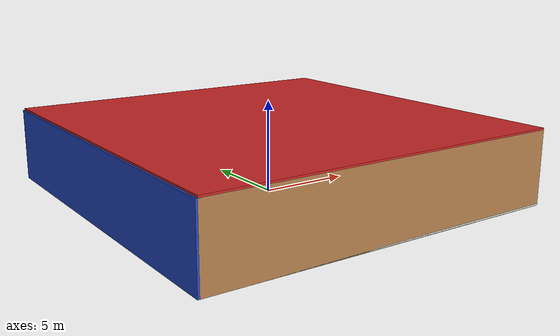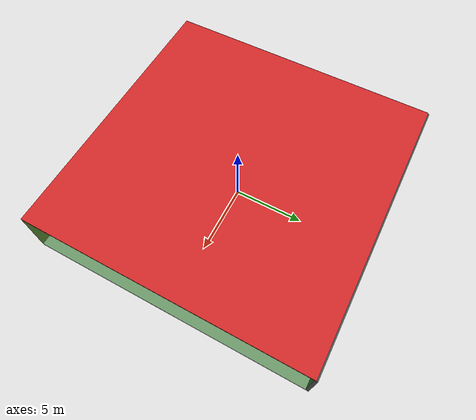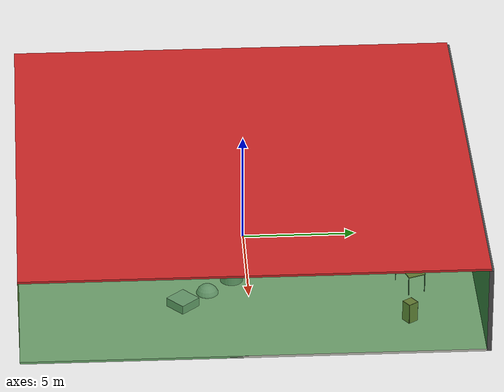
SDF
<sdf version="1.4">
 <world name="default">
  <physics type="ode">
   <max_step_size>0.001</max_step_size>
   <real_time_factor>1</real_time_factor>
   <real_time_update_rate>1000</real_time_update_rate>
   <gravity>0 0 -9.8</gravity>
  </physics>
  <scene><ambient>0.4 0.4 0.4 1</ambient><background>0.7 0.7 0.7 1</background><shadows>1</shadows></scene>
  <model name="Surrounding">
   <static>1</static>
   <link name="Ceiling">
    <collision name="Ceiling_Collision"><geometry><box><size>20 20 0.1</size></box></geometry></collision>
    <visual name="Ceiling_Visual">
     <geometry><box><size>20 20 0.1</size></box></geometry>
     <material>
      <script><uri>file://media/materials/scripts/gazebo.material</uri><name>Gazebo/RedGlow</name></script>
     </material>
    </visual>
    <pose>0 0 4.05 0 0 0</pose>
   </link>
   <link name="Wall_South">
    <collision name="Wall_South_Collision">
     <geometry><box><size>20 0 4</size></box></geometry>
     <pose>0 0 2 0 -0 0</pose>
    </collision>
    <visual name="Wall_South_Visual">
     <pose>0 0 2 0 -0 0</pose>
     <geometry><box><size>20 0 4</size></box></geometry>
     <material>
      <script><uri>file://media/materials/scripts/gazebo.material</uri><name>Gazebo/WoodFloor</name></script>
     </material>
    </visual>
    <velocity_decay><linear>0</linear><angular>0</angular></velocity_decay>
    <pose>0 -10 0 0 -0 0</pose>
   </link>
   <link name="Wall_East">
    <collision name="Wall_21_Collision">
     <geometry><box><size>20 0 4</size></box></geometry>
     <pose>0 0 2 0 -0 0</pose>
    </collision>
    <visual name="Wall_21_Visual">
     <pose>0 0 2 0 -0 0</pose>
     <geometry><box><size>20 0 4</size></box></geometry>
     <material>
      <script><uri>file://media/materials/scripts/gazebo.material</uri><name>Gazebo/GreenTransparent</name></script>
     </material>
    </visual>
    <velocity_decay><linear>0</linear><angular>0</angular></velocity_decay>
    <pose>10 0 0 0 -0 1.5708</pose>
   </link>
   <link name="Wall_North">
    <collision name="Wall_22_Collision">
     <geometry><box><size>20 0.2 4</size></box></geometry>
     <pose>0 0 2 0 -0 0</pose>
    </collision>
    <visual name="Wall_22_Visual">
     <pose>0 0 2 0 -0 0</pose>
     <geometry><box><size>20 0.2 4</size></box></geometry>
     <material>
      <script><uri>file://media/materials/scripts/gazebo.material</uri><name>Gazebo/DarkGrey</name></script>
     </material>
    </visual>
    <velocity_decay><linear>0</linear><angular>0</angular></velocity_decay>
    <pose>0 10 0 0 -0 0</pose>
   </link>
   <link name="Wall_West">
    <collision name="Wall_23_Collision">
     <geometry><box><size>20 0.2 4</size></box></geometry>
     <pose>0 0 2 0 -0 0</pose>
    </collision>
    <visual name="Wall_23_Visual">
     <pose>0 0 2 0 -0 0</pose>
     <geometry><box><size>20 0.2 4</size></box></geometry>
     <material>
      <script><uri>file://media/materials/scripts/gazebo.material</uri><name>Gazebo/BlueGlow</name></script>
     </material>
    </visual>
    <velocity_decay><linear>0</linear><angular>0</angular></velocity_decay>
    <pose>-10 0 0 0 0 -1.5708</pose>
   </link>
   <link name="Ground_link">
    <collision name="collision">
     <pose>0 0 .05 0 -0 0</pose>
     <geometry><box><size>20 20 0.1</size></box></geometry>
    </collision>
    <visual name="visual">
     <pose>0 0 .05 0 -0 0</pose>
     <geometry><box><size>20 20 0.1</size></box></geometry>
     <material>
      <script><uri>file://media/materials/scripts/gazebo.material</uri><name>Gazebo/PaintedWall</name></script>
     </material>
    </visual>
   </link>
   <static>1</static>
  </model>
  <spherical_coordinates>
   <surface_model>EARTH_WGS84</surface_model>
   <latitude_deg>0</latitude_deg>
   <longitude_deg>0</longitude_deg>
   <elevation>0</elevation>
   <heading_deg>0</heading_deg>
  </spherical_coordinates>
  <light name="lightball_0" type="diffuse">
   <diffuse>0.8 0.8 0.8 1</diffuse>
   <specular>0.2 0.2 0.2 1</specular>
   <attenuation>
    <range>100</range>
    <constant>0.7</constant>
    <linear>0.01</linear>
    <quadratic>0.001</quadratic>
   </attenuation>
   <direction>-0.5 0.1 -0.9</direction>
   <pose>4.64705744855 8.989524417 3.03159890731 0 0 0</pose>
  </light>
  <light name="lightball_1" type="diffuse">
   <diffuse>0.8 0.8 0.8 1</diffuse>
   <specular>0.2 0.2 0.2 1</specular>
   <attenuation>
    <range>100</range>
    <constant>0.7</constant>
    <linear>0.01</linear>
    <quadratic>0.001</quadratic>
   </attenuation>
   <direction>-0.5 0.1 -0.9</direction>
   <pose>-1.84978983653 -1.08864190391 1.92431507638 0 0 0</pose>
  </light>
  <light name="lightball_2" type="diffuse">
   <diffuse>0.8 0.8 0.8 1</diffuse>
   <specular>0.2 0.2 0.2 1</specular>
   <attenuation>
    <range>100</range>
    <constant>0.7</constant>
    <linear>0.01</linear>
    <quadratic>0.001</quadratic>
   </attenuation>
   <direction>-0.5 0.1 -0.9</direction>
   <pose>-6.27145465511 -2.57652398416 1.48829518501 0 0 0</pose>
  </light>
  <light name="lightball_3" type="diffuse">
   <diffuse>0.8 0.8 0.8 1</diffuse>
   <specular>0.2 0.2 0.2 1</specular>
   <attenuation>
    <range>100</range>
    <constant>0.7</constant>
    <linear>0.01</linear>
    <quadratic>0.001</quadratic>
   </attenuation>
   <direction>-0.5 0.1 -0.9</direction>
   <pose>2.53264481288 0.60827010671 1.36498648687 0 0 0</pose>
  </light>
  <light name="lightball_4" type="diffuse">
   <diffuse>0.8 0.8 0.8 1</diffuse>
   <specular>0.2 0.2 0.2 1</specular>
   <attenuation>
    <range>100</range>
    <constant>0.7</constant>
    <linear>0.01</linear>
    <quadratic>0.001</quadratic>
   </attenuation>
   <direction>-0.5 0.1 -0.9</direction>
   <pose>-6.4408598034 3.57926257534 3.75786296359 0 0 0</pose>
  </light>
  <light name="lightball_5" type="diffuse">
   <diffuse>0.8 0.8 0.8 1</diffuse>
   <specular>0.2 0.2 0.2 1</specular>
   <attenuation>
    <range>100</range>
    <constant>0.7</constant>
    <linear>0.01</linear>
    <quadratic>0.001</quadratic>
   </attenuation>
   <direction>-0.5 0.1 -0.9</direction>
   <pose>-1.76869256267 -1.84567724041 2.86350270826 0 0 0</pose>
  </light>
  <light name="lightball_6" type="diffuse">
   <diffuse>0.8 0.8 0.8 1</diffuse>
   <specular>0.2 0.2 0.2 1</specular>
   <attenuation>
    <range>100</range>
    <constant>0.7</constant>
    <linear>0.01</linear>
    <quadratic>0.001</quadratic>
   </attenuation>
   <direction>-0.5 0.1 -0.9</direction>
   <pose>6.40855052165 -9.2615225336 2.48218372221 0 0 0</pose>
  </light>
  <light name="lightball_7" type="diffuse">
   <diffuse>0.8 0.8 0.8 1</diffuse>
   <specular>0.2 0.2 0.2 1</specular>
   <attenuation>
    <range>100</range>
    <constant>0.7</constant>
    <linear>0.01</linear>
    <quadratic>0.001</quadratic>
   </attenuation>
   <direction>-0.5 0.1 -0.9</direction>
   <pose>3.71786664277 4.02581056653 1.58058912657 0 0 0</pose>
  </light>
  <light name="lightball_8" type="diffuse">
   <diffuse>0.8 0.8 0.8 1</diffuse>
   <specular>0.2 0.2 0.2 1</specular>
   <attenuation>
    <range>100</range>
    <constant>0.7</constant>
    <linear>0.01</linear>
    <quadratic>0.001</quadratic>
   </attenuation>
   <direction>-0.5 0.1 -0.9</direction>
   <pose>0.6206540991 -0.28309523247 1.09680903479 0 0 0</pose>
  </light>
  <light name="lightball_9" type="diffuse">
   <diffuse>0.8 0.8 0.8 1</diffuse>
   <specular>0.2 0.2 0.2 1</specular>
   <attenuation>
    <range>100</range>
    <constant>0.7</constant>
    <linear>0.01</linear>
    <quadratic>0.001</quadratic>
   </attenuation>
   <direction>-0.5 0.1 -0.9</direction>
   <pose>0.15010893045 -7.96048297596 3.62950088831 0 0 0</pose>
  </light>
  <include><uri>model://table</uri><pose>-4.30213550555 1.16169508782 0 0 0 2.94303606371</pose></include>
  <include>
   <uri>model://textured_shapes</uri>
   <pose>4.83343391585 -1.80220037401 0 0 0 0.742244383568</pose>
  </include>
  <include><uri>model://table</uri><pose>4.71455768564 7.06232528575 0 0 0 0.350510291632</pose></include>
  <include><uri>model://cabinet</uri><pose>7.48326207005 6.82548007191 0 0 0 0.593812201155</pose></include>
 </world>
</sdf>

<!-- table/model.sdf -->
<sdf version="1.5">
  <model name="table">
    <static>true</static>
    <link name="link">
      <collision name="surface">
        <pose>0 0 1.0 0 0 0</pose>
        <geometry>
          <box>
            <size>1.5 0.8 0.03</size>
          </box>
        </geometry>
        <surface>
          <friction>
            <ode>
              <mu>0.6</mu>
              <mu2>0.6</mu2>
            </ode>
          </friction>
        </surface>
      </collision>
      <visual name="visual1">
        <pose>0 0 1.0 0 0 0</pose>
        <geometry>
          <box>
            <size>1.5 0.8 0.03</size>
          </box>
        </geometry>
        <material>
          <script>
            <uri>model://media/materials/scripts/gazebo.material</uri>
            <name>Gazebo/Wood</name>
          </script>
        </material>
      </visual>
      <collision name="front_left_leg">
        <pose>0.68 0.38 0.5 0 0 0</pose>
        <geometry>
          <cylinder>
            <radius>0.02</radius>
            <length>1.0</length>
          </cylinder>
        </geometry>
      </collision>
      <visual name="front_left_leg">
        <pose>0.68 0.38 0.5 0 0 0</pose>
        <geometry>
          <cylinder>
            <radius>0.02</radius>
            <length>1.0</length>
          </cylinder>
        </geometry>
        <material>
          <script>
            <uri>model://media/materials/scripts/gazebo.material</uri>
            <name>Gazebo/Grey</name>
          </script>
        </material>
      </visual>
      <collision name="front_right_leg">
        <pose>0.68 -0.38 0.5 0 0 0</pose>
        <geometry>
          <cylinder>
            <radius>0.02</radius>
            <length>1.0</length>
          </cylinder>
        </geometry>
      </collision>
      <visual name="front_right_leg">
        <pose>0.68 -0.38 0.5 0 0 0</pose>
        <geometry>
          <cylinder>
            <radius>0.02</radius>
            <length>1.0</length>
          </cylinder>
        </geometry>
        <material>
          <script>
            <uri>model://media/materials/scripts/gazebo.material</uri>
            <name>Gazebo/Grey</name>
          </script>
        </material>
      </visual>
      <collision name="back_right_leg">
        <pose>-0.68 -0.38 0.5 0 0 0</pose>
        <geometry>
          <cylinder>
            <radius>0.02</radius>
            <length>1.0</length>
          </cylinder>
        </geometry>
      </collision>
      <visual name="back_right_leg">
        <pose>-0.68 -0.38 0.5 0 0 0</pose>
        <geometry>
          <cylinder>
            <radius>0.02</radius>
            <length>1.0</length>
          </cylinder>
        </geometry>
        <material>
          <script>
            <uri>model://media/materials/scripts/gazebo.material</uri>
            <name>Gazebo/Grey</name>
          </script>
        </material>
      </visual>
      <collision name="back_left_leg">
        <pose>-0.68 0.38 0.5 0 0 0</pose>
        <geometry>
          <cylinder>
            <radius>0.02</radius>
            <length>1.0</length>
          </cylinder>
        </geometry>
      </collision>
      <visual name="back_left_leg">
        <pose>-0.68 0.38 0.5 0 0 0</pose>
        <geometry>
          <cylinder>
            <radius>0.02</radius>
            <length>1.0</length>
          </cylinder>
        </geometry>
        <material>
          <script>
            <uri>model://media/materials/scripts/gazebo.material</uri>
            <name>Gazebo/Grey</name>
          </script>
        </material>
      </visual>
    </link>
  </model>
</sdf>

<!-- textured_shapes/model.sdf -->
<sdf version="1.6">
  <model name="textured_shapes">
    <pose>0 0 0.5 0 0 0</pose>
    <link name="box">
      <pose>0 -1.5 0 0 0 0</pose>
      <collision name="collision">
        <geometry>
          <box>
            <size>1 1 1</size>
          </box>
        </geometry>
      </collision>
      <visual name="visual">
        <geometry>
          <box>
            <size>1 1 1</size>
          </box>
        </geometry>
        <material>
          <script>
            <uri>model://../model_source/models/textured_shapes/materials/scripts</uri>
            <uri>model://../model_source/models/textured_shapes/materials/textures</uri>
            <name>TexturedShape/Squares</name>
          </script>
        </material>
      </visual>
    </link>
    <link name="sphere">
      <collision name="collision">
        <geometry>
          <sphere>
            <radius>0.5</radius>
          </sphere>
        </geometry>
      </collision>
      <visual name="visual">
        <geometry>
          <sphere>
            <radius>0.5</radius>
          </sphere>
        </geometry>
        <material>
          <script>
            <uri>model://../model_source/models/textured_shapes/materials/scripts</uri>
            <uri>model://../model_source/models/textured_shapes/materials/textures</uri>
            <name>TexturedShape/Squares</name>
          </script>
        </material>
      </visual>
    </link>
    <link name="cylinder">
      <pose>0 1.5 0 0 0 0</pose>
      <collision name="collision">
        <geometry>
          <cylinder>
            <radius>0.5</radius>
            <length>1</length>
          </cylinder>
        </geometry>
      </collision>
      <visual name="visual">
        <geometry>
          <cylinder>
            <radius>0.5</radius>
            <length>1</length>
          </cylinder>
        </geometry>
        <material>
          <script>
            <uri>model://../model_source/models/textured_shapes/materials/scripts</uri>
            <uri>model://../model_source/models/textured_shapes/materials/textures</uri>
            <name>TexturedShape/Squares</name>
          </script>
        </material>
      </visual>
    </link>
  </model>
</sdf>

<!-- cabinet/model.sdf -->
<sdf version="1.5">
  <model name="cabinet">
    <static>true</static>
    <link name="cabinet_bottom_plate">
      <inertial>
        <pose>0 0 -1 0 0 0</pose>
        <inertia>
          <ixx>2.050000</ixx>
          <ixy>0</ixy>
          <ixz>0</ixz>
          <iyy>2.050000</iyy>
          <iyz>0</iyz>
          <izz>2.050000</izz>
        </inertia>
        <mass>25.000000</mass>
      </inertial>
      <collision name="cabinet_bottom_plate_geom">
        <pose>0 0 0.010000 0 0 0</pose>
        <geometry>
          <box>
            <size>0.450000 0.450000 0.020000</size>
          </box>
        </geometry>
      </collision>
      <visual name="cabinet_bottom_plate_geom_visual">
        <pose>0 0 0.010000 0 0 0</pose>
        <geometry>
          <box>
            <size>0.450000 0.450000 0.020000</size>
          </box>
        </geometry>
        <material>
          <script>
            <uri>model://media/materials/scripts/gazebo.material</uri>
            <name>Gazebo/Wood</name>
          </script>
        </material>
      </visual>
      <collision name="cabinet_bottom_plate_geom_cabinet_back_plate">
        <pose>0.235000 0 0.510000 0 0 0</pose>
        <geometry>
          <box>
            <size>0.020000 0.450000 1.020000</size>
          </box>
        </geometry>
      </collision>
      <visual name="cabinet_bottom_plate_geom_cabinet_back_plate_visual">
        <pose>0.235000 0 0.510000 0 0 0</pose>
        <geometry>
          <box>
            <size>0.020000 0.450000 1.020000</size>
          </box>
        </geometry>
        <material>
          <script>
            <uri>model://media/materials/scripts/gazebo.material</uri>
            <name>Gazebo/Wood</name>
          </script>
        </material>
      </visual>
      <collision name="cabinet_bottom_plate_geom_cabinet_left_plate">
        <pose>0 0.235000 0.510000 0 0 0</pose>
        <geometry>
          <box>
            <size>0.450000 0.020000 1.020000</size>
          </box>
        </geometry>
      </collision>
      <visual name="cabinet_bottom_plate_geom_cabinet_left_plate_visual">
        <pose>0 0.235000 0.510000 0 0 0</pose>
        <geometry>
          <box>
            <size>0.450000 0.020000 1.020000</size>
          </box>
        </geometry>
        <material>
          <script>
            <uri>model://media/materials/scripts/gazebo.material</uri>
            <name>Gazebo/Wood</name>
          </script>
        </material>
      </visual>
      <collision name="cabinet_bottom_plate_geom_cabinet_middle_plate">
        <pose>0 0 0.510000 0 0 0</pose>
        <geometry>
          <box>
            <size>0.450000 0.450000 0.020000</size>
          </box>
        </geometry>
      </collision>
      <visual name="cabinet_bottom_plate_geom_cabinet_middle_plate_visual">
        <pose>0 0 0.510000 0 0 0</pose>
        <geometry>
          <box>
            <size>0.450000 0.450000 0.020000</size>
          </box>
        </geometry>
        <material>
          <script>
            <uri>model://media/materials/scripts/gazebo.material</uri>
            <name>Gazebo/Wood</name>
          </script>
        </material>
      </visual>
      <collision name="cabinet_bottom_plate_geom_cabinet_right_plate">
        <pose>0 -0.235000 0.510000 0 0 0</pose>
        <geometry>
          <box>
            <size>0.450000 0.020000 1.020000</size>
          </box>
        </geometry>
      </collision>
      <visual name="cabinet_bottom_plate_geom_cabinet_right_plate_visual">
        <pose>0 -0.235000 0.510000 0 0 0</pose>
        <geometry>
          <box>
            <size>0.450000 0.020000 1.020000</size>
          </box>
        </geometry>
        <material>
          <script>
            <uri>model://media/materials/scripts/gazebo.material</uri>
            <name>Gazebo/Wood</name>
          </script>
        </material>
      </visual>
      <collision name="cabinet_bottom_plate_geom_cabinet_top_plate">
        <pose>0 0 1.010000 0 0 0</pose>
        <geometry>
          <box>
            <size>0.450000 0.450000 0.020000</size>
          </box>
        </geometry>
      </collision>
      <visual name="cabinet_bottom_plate_geom_cabinet_top_plate_visual">
        <pose>0 0 1.010000 0 0 0</pose>
        <geometry>
          <box>
            <size>0.450000 0.450000 0.020000</size>
          </box>
        </geometry>
        <material>
          <script>
            <uri>model://media/materials/scripts/gazebo.material</uri>
            <name>Gazebo/Wood</name>
          </script>
        </material>
      </visual>
    </link>
  </model>
</sdf>
